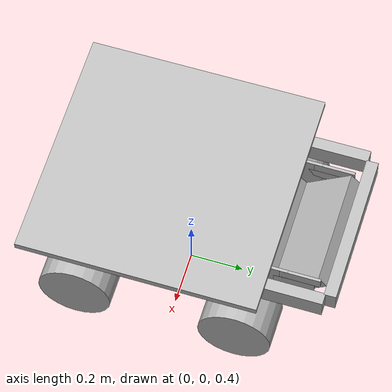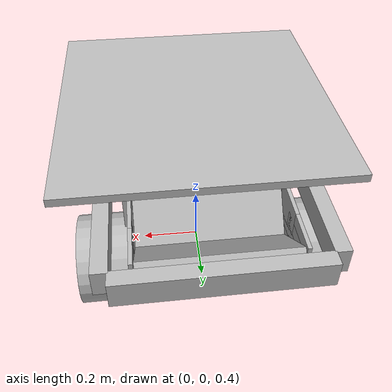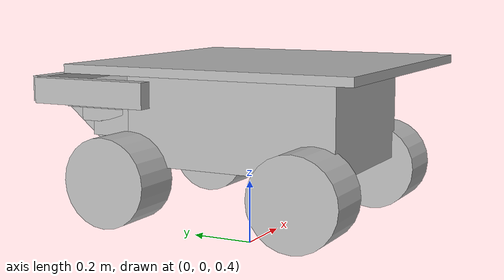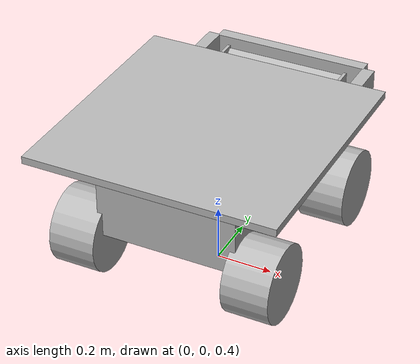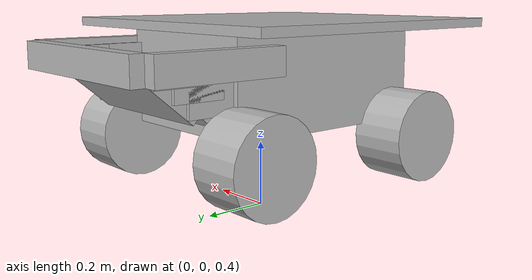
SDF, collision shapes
<?xml version='1.0'?>
<sdf version='1.6'>
  <model name="rover_ardupilot">
    <pose>0 0 0.5 0 0 0</pose>
    <include>
      <uri>model://mars_rover</uri>
      <pose>0 0 0 0 0 0</pose>
    </include>

    <link name="cam_link">
      <pose>0 0 0 0 0 0 </pose>
      <inertial>
        <mass>0.01</mass>
        <inertia>
          <ixx>0.0001</ixx>
          <iyy>0.0001</iyy>
          <izz>0.0001</izz>
        </inertia>
      </inertial>
    <sensor name="chase_cam" type="camera">
      <pose>-3 -1 1.4 0 0.37 0</pose>
      <camera>
        <horizontal_fov>1.2</horizontal_fov>
        <image>
          <width>1920</width>
          <height>1080</height>
        </image>
        <clip>
          <near>0.1</near>
          <far>1000</far>
        </clip>
      </camera>
      <always_on>0</always_on>
      <update_rate>60</update_rate>
      <visualize>false</visualize>
    </sensor>
  </link>
    <joint name="camera_mount" type="fixed">
      <child>cam_link</child>
      <parent>mars_rover::base_link</parent>
      <axis>
        <xyz>0 0 1</xyz>
        <limit>
          <upper>0</upper>
          <lower>0</lower>
        </limit>
      </axis>
    </joint>

    <link name='imu_link'>
      <pose>0 0 0 0 0 0</pose>
      <inertial>
        <pose>0 0 0 0 0 0</pose>
        <mass>0.015</mass>
        <inertia>
          <ixx>1e-05</ixx>
          <ixy>0</ixy>
          <ixz>0</ixz>
          <iyy>1e-05</iyy>
          <iyz>0</iyz>
          <izz>1e-05</izz>
        </inertia>
      </inertial>
      <sensor name="imu_sensor" type="imu">
        <pose>0 0 0 3.141593 0 0</pose>
        <always_on>1</always_on>
        <update_rate>1000.0</update_rate>
      </sensor>
    </link>
    <joint name='imu_joint' type='revolute'>
      <child>imu_link</child>
      <parent>mars_rover::base_link</parent>
      <axis>
        <xyz>1 0 0</xyz>
        <limit>
          <lower>0</lower>
          <upper>0</upper>
          <effort>0</effort>
          <velocity>0</velocity>
        </limit>
        <dynamics>
          <damping>0.7</damping>
        </dynamics>
        <use_parent_model_frame>1</use_parent_model_frame>
      </axis>
    </joint>

    <plugin name="ArduCopter_Plugin" filename="libArduPilotPlugin.so">
      <fdm_addr>127.0.0.1</fdm_addr>
      <fdm_port_in>9012</fdm_port_in>
      <fdm_port_out>9013</fdm_port_out>
      <!--
          Require by APM :
          Only change model and gazebo from XYZ to XY-Z coordinates
      -->
      <modelXYZToAirplaneXForwardZDown>0 0 0 3.141593 0 0</modelXYZToAirplaneXForwardZDown>
      <gazeboXYZToNED>0 0 0 3.141593 0 0</gazeboXYZToNED>
      <imuName>rover_ardupilot::imu_link::imu_sensor</imuName>
      <connectionTimeoutMaxCount>5</connectionTimeoutMaxCount>
      <!--
          incoming control command [0, 1]
          so offset it by 0 to get [0, 1]
          and divide max target by 1.
          offset = 0
          multiplier = 838 max rpm / 1 = 838
        -->
      <control channel="0">
        <type>VELOCITY</type>
        <offset>-0.5</offset>
        <p_gain>1</p_gain>
        <i_gain>0</i_gain>
        <d_gain>0</d_gain>
        <i_max>0</i_max>
        <i_min>0</i_min>
        <cmd_max>10</cmd_max>
        <cmd_min>-10</cmd_min>
        <jointName>mars_rover::front_left_joint</jointName>
        <multiplier>70</multiplier>
      </control>
      <control channel="2">
        <type>VELOCITY</type>
        <offset>-0.5</offset>
        <p_gain>1</p_gain>
        <i_gain>0</i_gain>
        <d_gain>0</d_gain>
        <i_max>0</i_max>
        <i_min>0</i_min>
        <cmd_max>10</cmd_max>
        <cmd_min>-10</cmd_min>
        <jointName>mars_rover::front_right_joint</jointName>
        <multiplier>70</multiplier>
      </control>
      <control channel="0">
        <type>VELOCITY</type>
        <offset>-0.5</offset>
        <p_gain>1</p_gain>
        <i_gain>0</i_gain>
        <d_gain>0</d_gain>
        <i_max>0</i_max>
        <i_min>0</i_min>
        <cmd_max>10</cmd_max>
        <cmd_min>-10</cmd_min>
        <jointName>mars_rover::back_left_joint</jointName>
        <multiplier>70</multiplier>
      </control>
      <control channel="2">
        <type>VELOCITY</type>
        <offset>-0.5</offset>
        <p_gain>1</p_gain>
        <i_gain>0</i_gain>
        <d_gain>0</d_gain>
        <i_max>0</i_max>
        <i_min>0</i_min>
        <cmd_max>10</cmd_max>
        <cmd_min>-10</cmd_min>
        <jointName>mars_rover::back_right_joint</jointName>
        <multiplier>70</multiplier>
      </control>
    </plugin>

  </model>

</sdf>

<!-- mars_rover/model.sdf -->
<sdf version="1.6">
  <model name="mars_rover">
    <static>true</static>
    <link name="link">
      <collision name="solar_panel_collision">
        <pose>0 -0.06945 0.47293 0 0 0</pose>
        <geometry>
          <box>
            <size>0.87974 0.8821 0.02602</size>
          </box>
        </geometry>
      </collision>

      <collision name="chassis_collision">
        <pose>0 -0.05 0.31475 0 0 0</pose>
        <geometry>
          <box>
            <size>0.49522 0.67401 0.28915</size>
          </box>
        </geometry>
      </collision>

      <collision name="rear_left_bumper_collision">
        <pose>0.30107 0.38350 0.38976 0 0 0</pose>
        <geometry>
          <box>
            <size>0.04442 0.388970 0.07918</size>
          </box>
        </geometry>
      </collision>

      <collision name="rear_right_bumper_collision">
        <pose>-0.30107 0.38350 0.38976 0 0 0</pose>
        <geometry>
          <box>
            <size>0.04442 0.388970 0.07918</size>
          </box>
        </geometry>
      </collision>

      <collision name="rear_bumper_collision">
        <pose>0 0.59414 0.38976 0 0 0</pose>
        <geometry>
          <box>
            <size>0.566560 0.04442 0.07918</size>
          </box>
        </geometry>
      </collision>

      <collision name="bin_back_panel_collision">
        <pose>0 0.47 0.32114 0.69137 0 0</pose>
        <geometry>
          <box>
            <size>0.43774 0.212366009 0.05173</size>
          </box>
        </geometry>
      </collision>

      <collision name="bin_left_panel_collision1">
        <pose>0.22615 0.328970 0.33193 0 0 0</pose>
        <geometry>
          <box>
            <size>0.01116 0.19338 0.16304</size>
          </box>
        </geometry>
      </collision>

      <collision name="bin_left_panel_collision2">
        <pose>0.22615 0.471 0.393080 0 0 0</pose>
        <geometry>
          <box>
            <size>0.01116 0.15 0.04</size>
          </box>
        </geometry>
      </collision>

      <collision name="bin_left_panel_collision3">
        <pose>0.22615 0.450 0.353080 0 0 0</pose>
        <geometry>
          <box>
            <size>0.01116 0.15 0.04</size>
          </box>
        </geometry>
      </collision>

      <collision name="bin_left_panel_collision4">
        <pose>0.22615 0.39308 0.313080 0 0 0</pose>
        <geometry>
          <box>
            <size>0.01116 0.15 0.04</size>
          </box>
        </geometry>
      </collision>

      <collision name="bin_right_panel_collision1">
        <pose>-0.22615 0.328970 0.33193 0 0 0</pose>
        <geometry>
          <box>
            <size>0.01116 0.19338 0.16304</size>
          </box>
        </geometry>
      </collision>

      <collision name="bin_right_panel_collision2">
        <pose>-0.22615 0.471 0.393080 0 0 0</pose>
        <geometry>
          <box>
            <size>0.01116 0.15 0.04</size>
          </box>
        </geometry>
      </collision>

      <collision name="bin_right_panel_collision3">
        <pose>-0.22615 0.450 0.353080 0 0 0</pose>
        <geometry>
          <box>
            <size>0.01116 0.15 0.04</size>
          </box>
        </geometry>
      </collision>

      <collision name="bin_right_panel_collision4">
        <pose>-0.22615 0.39308 0.313080 0 0 0</pose>
        <geometry>
          <box>
            <size>0.01116 0.15 0.04</size>
          </box>
        </geometry>
      </collision>

      <collision name="bin_front_panel_collision">
        <pose>0 0.300470 0.32114 2.26207 0 0</pose>
        <geometry>
          <box>
            <size>0.43774 0.212366009 0.05173</size>
          </box>
        </geometry>
      </collision>

      <collision name="front_left_wheel_collision">
        <pose>0.31103 -0.32115 0.13580 1.5707 0 1.5707</pose>
        <geometry>
          <cylinder>
            <radius>0.1358</radius>
            <length>0.1641</length>
          </cylinder>
        </geometry>
      </collision>
      <collision name="front_right_wheel_collision">
        <pose>-0.31103 -0.32115 0.13580 1.5707 0 1.5707</pose>
        <geometry>
          <cylinder>
            <radius>0.1358</radius>
            <length>0.1641</length>
          </cylinder>
        </geometry>
      </collision>

      <collision name="rear_left_wheel_collision">
        <pose>0.31103 0.28049 0.13580 1.5707 0 1.5707</pose>
        <geometry>
          <cylinder>
            <radius>0.1358</radius>
            <length>0.1641</length>
          </cylinder>
        </geometry>
      </collision>

      <collision name="rear_right_wheel_collision">
        <pose>-0.31103 0.28049 0.13580 1.5707 0 1.5707</pose>
        <geometry>
          <cylinder>
            <radius>0.1358</radius>
            <length>0.1641</length>
          </cylinder>
        </geometry>
      </collision>

      <visual name="visual">
        <geometry>
          <mesh>
            <uri>model://../model_source/models/mars_rover/meshes/rover.dae</uri>
          </mesh>
        </geometry>
      </visual>
    </link>
  </model>
</sdf>
